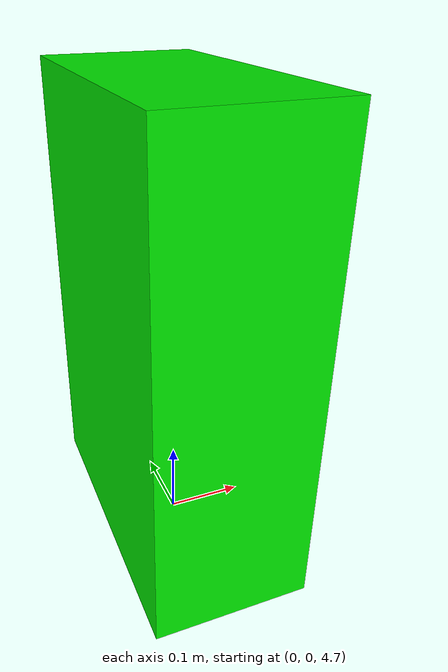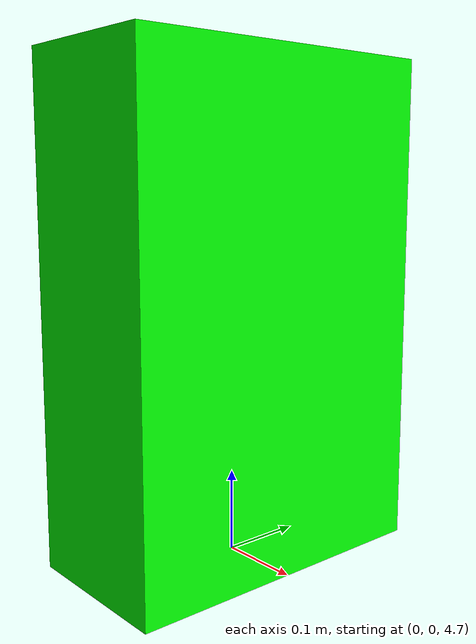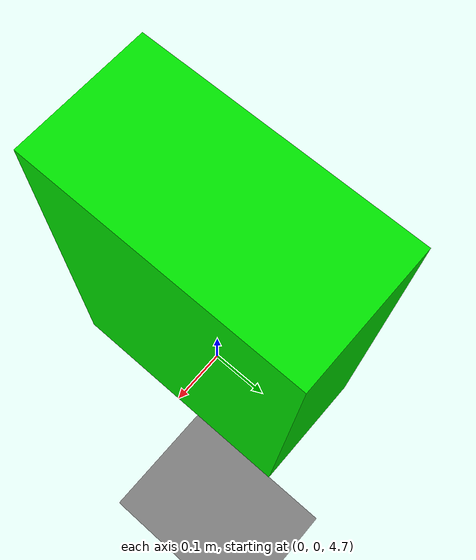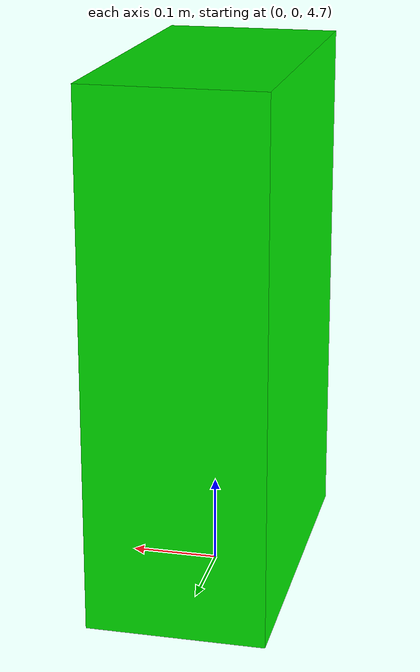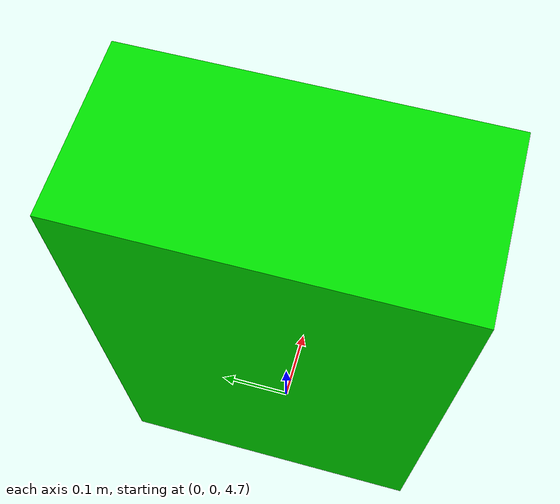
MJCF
<mujoco>
   <worldbody>
        <body name="tablelink" pos="0 0 0">
            <geom group="1" type="box" size="1.4 .8 .054" pos="0 0 1.8" conaffinity="1"
                  contype="1" mass="100"/>
        </body>
        <light diffuse=".5 .5 .5" pos="0 0 3" dir="0 0 -1"/>
        <geom type="plane" size="1 1 0.1" rgba=".9 0 0 1"/>
        <body pos="0 0 5">
            <joint type="free"/>
            <geom type="box" size=".1 .2 .3" rgba="0 .9 0 1"/>
        </body>
   </worldbody>
</mujoco>
